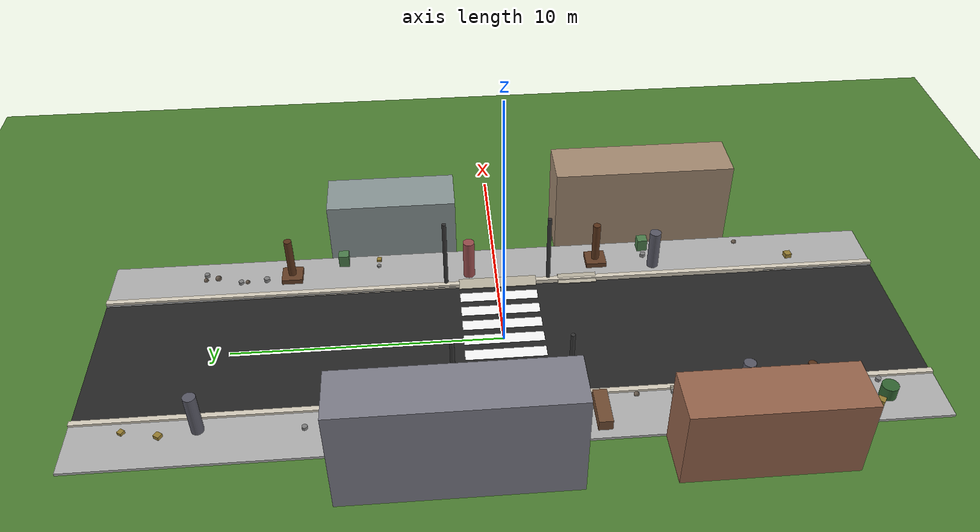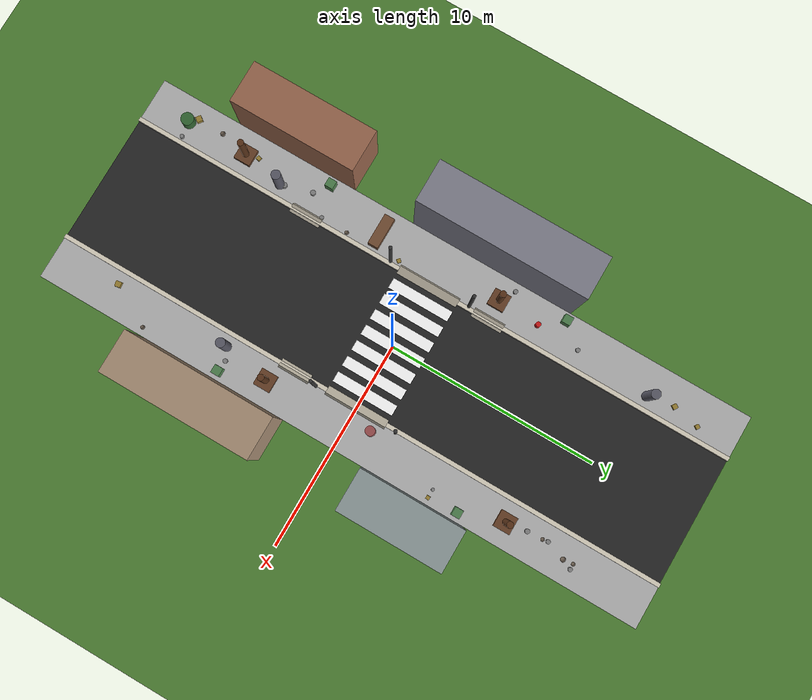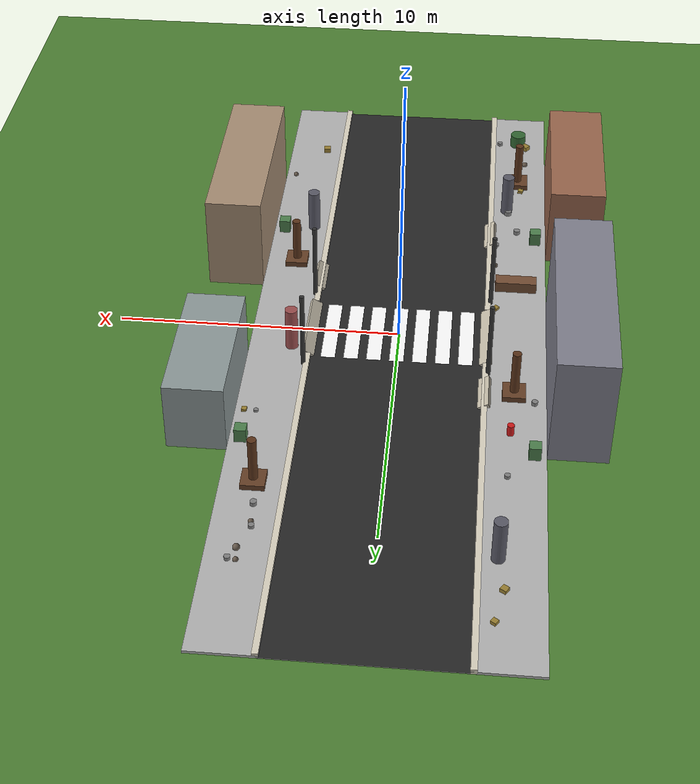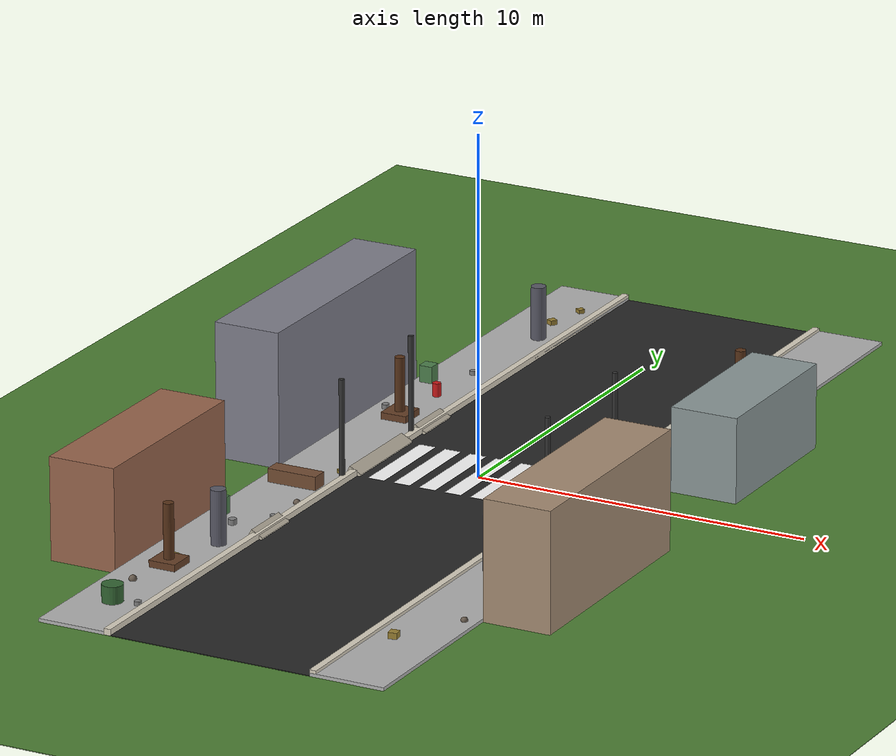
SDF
<?xml version="1.0" ?>
<sdf version="1.9">
  <world name="level3_challenge">
    <physics name="1ms" type="ignore">
      <max_step_size>0.001</max_step_size>
      <real_time_factor>1.0</real_time_factor>
    </physics>
    <plugin filename="gz-sim-physics-system" name="gz::sim::systems::Physics"/>
    <plugin filename="gz-sim-scene-broadcaster-system" name="gz::sim::systems::SceneBroadcaster"/>
    <plugin filename="gz-sim-sensors-system" name="gz::sim::systems::Sensors">
      <render_engine>ogre2</render_engine>
    </plugin>
    <plugin filename="gz-sim-user-commands-system" name="gz::sim::systems::UserCommands"/>

    <light type="directional" name="sun">
      <cast_shadows>true</cast_shadows>
      <pose>0 0 10 0 0 0</pose>
      <diffuse>0.8 0.8 0.8 1</diffuse>
      <specular>0.2 0.2 0.2 1</specular>
      <attenuation><range>1000</range><constant>0.9</constant><linear>0.01</linear><quadratic>0.001</quadratic></attenuation>
      <direction>-0.5 0.1 -0.9</direction>
    </light>

    <!-- Level 3: 고밀도 challenge - 고밀도 장애물, 좁은 통로, 연석/경사로 다수 -->

    <model name="ground_plane_visual">
      <static>true</static>
      <pose>0 0 -0.01 0 0 0</pose>
      <link name="link">
        <collision name="collision"><geometry><box><size>100 100 0.02</size></box></geometry></collision>
        <visual name="visual"><geometry><box><size>100 100 0.02</size></box></geometry>
          <material><ambient>0.3 0.5 0.2 1</ambient><diffuse>0.3 0.5 0.2 1</diffuse></material></visual>
      </link>
    </model>

    <model name="road">
      <static>true</static>
      <pose>0 0 0.01 0 0 0</pose>
      <link name="link">
        <collision name="collision"><geometry><box><size>6.0 30.0 0.02</size></box></geometry></collision>
        <visual name="visual"><geometry><box><size>6.0 30.0 0.02</size></box></geometry>
          <material><ambient>0.15 0.15 0.15 1</ambient><diffuse>0.15 0.15 0.15 1</diffuse></material></visual>
      </link>
    </model>

    <model name="sidewalk_left">
      <static>true</static>
      <pose>-4.1 0 0.05 0 0 0</pose>
      <link name="link">
        <collision name="collision"><geometry><box><size>2.2 30.0 0.1</size></box></geometry></collision>
        <visual name="visual"><geometry><box><size>2.2 30.0 0.1</size></box></geometry>
          <material><ambient>0.7 0.7 0.7 1</ambient><diffuse>0.7 0.7 0.7 1</diffuse></material></visual>
      </link>
    </model>

    <model name="sidewalk_right">
      <static>true</static>
      <pose>4.1 0 0.05 0 0 0</pose>
      <link name="link">
        <collision name="collision"><geometry><box><size>2.2 30.0 0.1</size></box></geometry></collision>
        <visual name="visual"><geometry><box><size>2.2 30.0 0.1</size></box></geometry>
          <material><ambient>0.7 0.7 0.7 1</ambient><diffuse>0.7 0.7 0.7 1</diffuse></material></visual>
      </link>
    </model>

    <model name="crosswalk_1">
      <static>true</static>
      <pose>-2.4 0 0.02 0 0 0</pose>
      <link name="link">
        <collision name="collision"><geometry><box><size>0.5 3 0.01</size></box></geometry></collision>
        <visual name="visual"><geometry><box><size>0.5 3 0.01</size></box></geometry>
          <material><ambient>1 1 1 1</ambient><diffuse>1 1 1 1</diffuse></material></visual>
      </link>
    </model>

    <model name="crosswalk_2">
      <static>true</static>
      <pose>-1.6 0 0.02 0 0 0</pose>
      <link name="link">
        <collision name="collision"><geometry><box><size>0.5 3 0.01</size></box></geometry></collision>
        <visual name="visual"><geometry><box><size>0.5 3 0.01</size></box></geometry>
          <material><ambient>1 1 1 1</ambient><diffuse>1 1 1 1</diffuse></material></visual>
      </link>
    </model>

    <model name="crosswalk_3">
      <static>true</static>
      <pose>-0.8 0 0.02 0 0 0</pose>
      <link name="link">
        <collision name="collision"><geometry><box><size>0.5 3 0.01</size></box></geometry></collision>
        <visual name="visual"><geometry><box><size>0.5 3 0.01</size></box></geometry>
          <material><ambient>1 1 1 1</ambient><diffuse>1 1 1 1</diffuse></material></visual>
      </link>
    </model>

    <model name="crosswalk_4">
      <static>true</static>
      <pose>0.0 0 0.02 0 0 0</pose>
      <link name="link">
        <collision name="collision"><geometry><box><size>0.5 3 0.01</size></box></geometry></collision>
        <visual name="visual"><geometry><box><size>0.5 3 0.01</size></box></geometry>
          <material><ambient>1 1 1 1</ambient><diffuse>1 1 1 1</diffuse></material></visual>
      </link>
    </model>

    <model name="crosswalk_5">
      <static>true</static>
      <pose>0.8 0 0.02 0 0 0</pose>
      <link name="link">
        <collision name="collision"><geometry><box><size>0.5 3 0.01</size></box></geometry></collision>
        <visual name="visual"><geometry><box><size>0.5 3 0.01</size></box></geometry>
          <material><ambient>1 1 1 1</ambient><diffuse>1 1 1 1</diffuse></material></visual>
      </link>
    </model>

    <model name="crosswalk_6">
      <static>true</static>
      <pose>1.6 0 0.02 0 0 0</pose>
      <link name="link">
        <collision name="collision"><geometry><box><size>0.5 3 0.01</size></box></geometry></collision>
        <visual name="visual"><geometry><box><size>0.5 3 0.01</size></box></geometry>
          <material><ambient>1 1 1 1</ambient><diffuse>1 1 1 1</diffuse></material></visual>
      </link>
    </model>

    <model name="crosswalk_7">
      <static>true</static>
      <pose>2.4 0 0.02 0 0 0</pose>
      <link name="link">
        <collision name="collision"><geometry><box><size>0.5 3 0.01</size></box></geometry></collision>
        <visual name="visual"><geometry><box><size>0.5 3 0.01</size></box></geometry>
          <material><ambient>1 1 1 1</ambient><diffuse>1 1 1 1</diffuse></material></visual>
      </link>
    </model>

    <model name="curb_left_south">
      <static>true</static>
      <pose>-3.1 -8.25 0.09999999999999999 0 0 0</pose>
      <link name="link">
        <collision name="collision"><geometry><box><size>0.2 13.5 0.18</size></box></geometry></collision>
        <visual name="visual"><geometry><box><size>0.2 13.5 0.18</size></box></geometry>
          <material><ambient>0.85 0.82 0.75 1</ambient><diffuse>0.85 0.82 0.75 1</diffuse></material></visual>
      </link>
    </model>

    <model name="curb_left_north">
      <static>true</static>
      <pose>-3.1 8.25 0.09999999999999999 0 0 0</pose>
      <link name="link">
        <collision name="collision"><geometry><box><size>0.2 13.5 0.18</size></box></geometry></collision>
        <visual name="visual"><geometry><box><size>0.2 13.5 0.18</size></box></geometry>
          <material><ambient>0.85 0.82 0.75 1</ambient><diffuse>0.85 0.82 0.75 1</diffuse></material></visual>
      </link>
    </model>

    <model name="curb_right_south">
      <static>true</static>
      <pose>3.1 -8.25 0.09999999999999999 0 0 0</pose>
      <link name="link">
        <collision name="collision"><geometry><box><size>0.2 13.5 0.18</size></box></geometry></collision>
        <visual name="visual"><geometry><box><size>0.2 13.5 0.18</size></box></geometry>
          <material><ambient>0.85 0.82 0.75 1</ambient><diffuse>0.85 0.82 0.75 1</diffuse></material></visual>
      </link>
    </model>

    <model name="curb_right_north">
      <static>true</static>
      <pose>3.1 8.25 0.09999999999999999 0 0 0</pose>
      <link name="link">
        <collision name="collision"><geometry><box><size>0.2 13.5 0.18</size></box></geometry></collision>
        <visual name="visual"><geometry><box><size>0.2 13.5 0.18</size></box></geometry>
          <material><ambient>0.85 0.82 0.75 1</ambient><diffuse>0.85 0.82 0.75 1</diffuse></material></visual>
      </link>
    </model>

    <model name="curb_ramp_left">
      <static>true</static>
      <pose>-3.1 0 0.09 0 0.5 0</pose>
      <link name="link">
        <collision name="collision"><geometry><box><size>0.4 3 0.18</size></box></geometry></collision>
        <visual name="visual"><geometry><box><size>0.4 3 0.18</size></box></geometry>
          <material><ambient>0.75 0.72 0.65 1</ambient><diffuse>0.75 0.72 0.65 1</diffuse></material></visual>
      </link>
    </model>

    <model name="curb_ramp_right">
      <static>true</static>
      <pose>3.1 0 0.09 0 -0.5 0</pose>
      <link name="link">
        <collision name="collision"><geometry><box><size>0.4 3 0.18</size></box></geometry></collision>
        <visual name="visual"><geometry><box><size>0.4 3 0.18</size></box></geometry>
          <material><ambient>0.75 0.72 0.65 1</ambient><diffuse>0.75 0.72 0.65 1</diffuse></material></visual>
      </link>
    </model>

    <model name="curb_extra_ramp_0">
      <static>true</static>
      <pose>-3.1 -6.29 0.09 0 0.5 0</pose>
      <link name="link">
        <collision name="collision"><geometry><box><size>0.4 1.5 0.18</size></box></geometry></collision>
        <visual name="visual"><geometry><box><size>0.4 1.5 0.18</size></box></geometry>
          <material><ambient>0.75 0.72 0.65 1</ambient><diffuse>0.75 0.72 0.65 1</diffuse></material></visual>
      </link>
    </model>

    <model name="curb_extra_ramp_1">
      <static>true</static>
      <pose>3.1 -3.12 0.09 0 -0.5 0</pose>
      <link name="link">
        <collision name="collision"><geometry><box><size>0.4 1.5 0.18</size></box></geometry></collision>
        <visual name="visual"><geometry><box><size>0.4 1.5 0.18</size></box></geometry>
          <material><ambient>0.75 0.72 0.65 1</ambient><diffuse>0.75 0.72 0.65 1</diffuse></material></visual>
      </link>
    </model>

    <model name="curb_extra_ramp_2">
      <static>true</static>
      <pose>-3.1 3.02 0.09 0 0.5 0</pose>
      <link name="link">
        <collision name="collision"><geometry><box><size>0.4 1.5 0.18</size></box></geometry></collision>
        <visual name="visual"><geometry><box><size>0.4 1.5 0.18</size></box></geometry>
          <material><ambient>0.75 0.72 0.65 1</ambient><diffuse>0.75 0.72 0.65 1</diffuse></material></visual>
      </link>
    </model>

    <model name="building_left_1">
      <static>true</static>
      <pose>-6.2 -8 1.5 0 0 0</pose>
      <link name="link">
        <collision name="collision"><geometry><box><size>2 6 3</size></box></geometry></collision>
        <visual name="visual"><geometry><box><size>2 6 3</size></box></geometry>
          <material><ambient>0.6 0.4 0.3 1</ambient><diffuse>0.6 0.4 0.3 1</diffuse></material></visual>
      </link>
    </model>

    <model name="building_left_2">
      <static>true</static>
      <pose>-6.2 2 2 0 0 0</pose>
      <link name="link">
        <collision name="collision"><geometry><box><size>2 8 4</size></box></geometry></collision>
        <visual name="visual"><geometry><box><size>2 8 4</size></box></geometry>
          <material><ambient>0.5 0.5 0.55 1</ambient><diffuse>0.5 0.5 0.55 1</diffuse></material></visual>
      </link>
    </model>

    <model name="building_right_1">
      <static>true</static>
      <pose>6.2 -6 1.75 0 0 0</pose>
      <link name="link">
        <collision name="collision"><geometry><box><size>2 7 3.5</size></box></geometry></collision>
        <visual name="visual"><geometry><box><size>2 7 3.5</size></box></geometry>
          <material><ambient>0.65 0.55 0.45 1</ambient><diffuse>0.65 0.55 0.45 1</diffuse></material></visual>
      </link>
    </model>

    <model name="building_right_2">
      <static>true</static>
      <pose>6.2 4 1.25 0 0 0</pose>
      <link name="link">
        <collision name="collision"><geometry><box><size>2 5 2.5</size></box></geometry></collision>
        <visual name="visual"><geometry><box><size>2 5 2.5</size></box></geometry>
          <material><ambient>0.55 0.6 0.6 1</ambient><diffuse>0.55 0.6 0.6 1</diffuse></material></visual>
      </link>
    </model>

    <model name="tree_1">
      <static>true</static>
      <pose>-4.1 -10 0.15 0 0 0</pose>
      <link name="link">
        <collision name="collision"><geometry><box><size>0.8 0.8 0.3</size></box></geometry></collision>
        <visual name="visual"><geometry><box><size>0.8 0.8 0.3</size></box></geometry>
          <material><ambient>0.4 0.25 0.15 1</ambient><diffuse>0.4 0.25 0.15 1</diffuse></material></visual>
      </link>
    </model>

    <model name="tree_1_trunk">
      <static>true</static>
      <pose>-4.1 -10 1.1 0 0 0</pose>
      <link name="link">
        <collision name="collision"><geometry><cylinder><radius>0.15</radius><length>1.6</length></cylinder></geometry></collision>
        <visual name="visual"><geometry><cylinder><radius>0.15</radius><length>1.6</length></cylinder></geometry>
          <material><ambient>0.35 0.2 0.1 1</ambient><diffuse>0.35 0.2 0.1 1</diffuse></material></visual>
      </link>
    </model>

    <model name="tree_2">
      <static>true</static>
      <pose>4.1 -4 0.15 0 0 0</pose>
      <link name="link">
        <collision name="collision"><geometry><box><size>0.8 0.8 0.3</size></box></geometry></collision>
        <visual name="visual"><geometry><box><size>0.8 0.8 0.3</size></box></geometry>
          <material><ambient>0.4 0.25 0.15 1</ambient><diffuse>0.4 0.25 0.15 1</diffuse></material></visual>
      </link>
    </model>

    <model name="tree_2_trunk">
      <static>true</static>
      <pose>4.1 -4 1.1 0 0 0</pose>
      <link name="link">
        <collision name="collision"><geometry><cylinder><radius>0.15</radius><length>1.6</length></cylinder></geometry></collision>
        <visual name="visual"><geometry><cylinder><radius>0.15</radius><length>1.6</length></cylinder></geometry>
          <material><ambient>0.35 0.2 0.1 1</ambient><diffuse>0.35 0.2 0.1 1</diffuse></material></visual>
      </link>
    </model>

    <model name="tree_3">
      <static>true</static>
      <pose>-4.1 3 0.15 0 0 0</pose>
      <link name="link">
        <collision name="collision"><geometry><box><size>0.8 0.8 0.3</size></box></geometry></collision>
        <visual name="visual"><geometry><box><size>0.8 0.8 0.3</size></box></geometry>
          <material><ambient>0.4 0.25 0.15 1</ambient><diffuse>0.4 0.25 0.15 1</diffuse></material></visual>
      </link>
    </model>

    <model name="tree_3_trunk">
      <static>true</static>
      <pose>-4.1 3 1.1 0 0 0</pose>
      <link name="link">
        <collision name="collision"><geometry><cylinder><radius>0.15</radius><length>1.6</length></cylinder></geometry></collision>
        <visual name="visual"><geometry><cylinder><radius>0.15</radius><length>1.6</length></cylinder></geometry>
          <material><ambient>0.35 0.2 0.1 1</ambient><diffuse>0.35 0.2 0.1 1</diffuse></material></visual>
      </link>
    </model>

    <model name="tree_4">
      <static>true</static>
      <pose>4.1 8 0.15 0 0 0</pose>
      <link name="link">
        <collision name="collision"><geometry><box><size>0.8 0.8 0.3</size></box></geometry></collision>
        <visual name="visual"><geometry><box><size>0.8 0.8 0.3</size></box></geometry>
          <material><ambient>0.4 0.25 0.15 1</ambient><diffuse>0.4 0.25 0.15 1</diffuse></material></visual>
      </link>
    </model>

    <model name="tree_4_trunk">
      <static>true</static>
      <pose>4.1 8 1.1 0 0 0</pose>
      <link name="link">
        <collision name="collision"><geometry><cylinder><radius>0.15</radius><length>1.6</length></cylinder></geometry></collision>
        <visual name="visual"><geometry><cylinder><radius>0.15</radius><length>1.6</length></cylinder></geometry>
          <material><ambient>0.35 0.2 0.1 1</ambient><diffuse>0.35 0.2 0.1 1</diffuse></material></visual>
      </link>
    </model>

    <model name="bench_1">
      <static>true</static>
      <pose>-4.1 -3 0.25 0 0 0</pose>
      <link name="link">
        <collision name="collision"><geometry><box><size>1.5 0.5 0.5</size></box></geometry></collision>
        <visual name="visual"><geometry><box><size>1.5 0.5 0.5</size></box></geometry>
          <material><ambient>0.45 0.3 0.2 1</ambient><diffuse>0.45 0.3 0.2 1</diffuse></material></visual>
      </link>
    </model>

    <model name="trash_bin_1">
      <static>true</static>
      <pose>-4.1 -13 0.3 0 0 0</pose>
      <link name="link">
        <collision name="collision"><geometry><cylinder><radius>0.3</radius><length>0.6</length></cylinder></geometry></collision>
        <visual name="visual"><geometry><cylinder><radius>0.3</radius><length>0.6</length></cylinder></geometry>
          <material><ambient>0.2 0.4 0.2 1</ambient><diffuse>0.2 0.4 0.2 1</diffuse></material></visual>
      </link>
    </model>

    <model name="hydrant_1">
      <static>true</static>
      <pose>-3.9999999999999996 5 0.25 0 0 0</pose>
      <link name="link">
        <collision name="collision"><geometry><cylinder><radius>0.12</radius><length>0.5</length></cylinder></geometry></collision>
        <visual name="visual"><geometry><cylinder><radius>0.12</radius><length>0.5</length></cylinder></geometry>
          <material><ambient>0.8 0.1 0.1 1</ambient><diffuse>0.8 0.1 0.1 1</diffuse></material></visual>
      </link>
    </model>

    <model name="traffic_light_1">
      <static>true</static>
      <pose>-3.1999999999999997 -2 1.5 0 0 0</pose>
      <link name="link">
        <collision name="collision"><geometry><cylinder><radius>0.08</radius><length>3</length></cylinder></geometry></collision>
        <visual name="visual"><geometry><cylinder><radius>0.08</radius><length>3</length></cylinder></geometry>
          <material><ambient>0.2 0.2 0.2 1</ambient><diffuse>0.2 0.2 0.2 1</diffuse></material></visual>
      </link>
    </model>

    <model name="traffic_light_2">
      <static>true</static>
      <pose>3.1999999999999997 2 1.5 0 0 0</pose>
      <link name="link">
        <collision name="collision"><geometry><cylinder><radius>0.08</radius><length>3</length></cylinder></geometry></collision>
        <visual name="visual"><geometry><cylinder><radius>0.08</radius><length>3</length></cylinder></geometry>
          <material><ambient>0.2 0.2 0.2 1</ambient><diffuse>0.2 0.2 0.2 1</diffuse></material></visual>
      </link>
    </model>

    <model name="traffic_light_3">
      <static>true</static>
      <pose>-3.1999999999999997 2 1.5 0 0 0</pose>
      <link name="link">
        <collision name="collision"><geometry><cylinder><radius>0.08</radius><length>3</length></cylinder></geometry></collision>
        <visual name="visual"><geometry><cylinder><radius>0.08</radius><length>3</length></cylinder></geometry>
          <material><ambient>0.2 0.2 0.2 1</ambient><diffuse>0.2 0.2 0.2 1</diffuse></material></visual>
      </link>
    </model>

    <model name="traffic_light_4">
      <static>true</static>
      <pose>3.1999999999999997 -2 1.5 0 0 0</pose>
      <link name="link">
        <collision name="collision"><geometry><cylinder><radius>0.08</radius><length>3</length></cylinder></geometry></collision>
        <visual name="visual"><geometry><cylinder><radius>0.08</radius><length>3</length></cylinder></geometry>
          <material><ambient>0.2 0.2 0.2 1</ambient><diffuse>0.2 0.2 0.2 1</diffuse></material></visual>
      </link>
    </model>

    <model name="pedestrian_static_0">
      <static>true</static>
      <pose>-3.70 10.63 0.85 0 0 0</pose>
      <link name="link">
        <collision name="collision"><geometry><cylinder><radius>0.22</radius><length>1.7</length></cylinder></geometry></collision>
        <visual name="visual"><geometry><cylinder><radius>0.22</radius><length>1.7</length></cylinder></geometry>
          <material><ambient>0.35 0.35 0.4 1</ambient><diffuse>0.35 0.35 0.4 1</diffuse></material></visual>
      </link>
    </model>

    <model name="pedestrian_static_1">
      <static>true</static>
      <pose>3.70 -6.26 0.85 0 0 0</pose>
      <link name="link">
        <collision name="collision"><geometry><cylinder><radius>0.22</radius><length>1.7</length></cylinder></geometry></collision>
        <visual name="visual"><geometry><cylinder><radius>0.22</radius><length>1.7</length></cylinder></geometry>
          <material><ambient>0.35 0.35 0.4 1</ambient><diffuse>0.35 0.35 0.4 1</diffuse></material></visual>
      </link>
    </model>

    <model name="pedestrian_static_2">
      <static>true</static>
      <pose>-3.70 -8.01 0.85 0 0 0</pose>
      <link name="link">
        <collision name="collision"><geometry><cylinder><radius>0.22</radius><length>1.7</length></cylinder></geometry></collision>
        <visual name="visual"><geometry><cylinder><radius>0.22</radius><length>1.7</length></cylinder></geometry>
          <material><ambient>0.35 0.35 0.4 1</ambient><diffuse>0.35 0.35 0.4 1</diffuse></material></visual>
      </link>
    </model>

    <model name="pedestrian_dynamic_0">
      <static>false</static>
      <pose>3.70 1.07 0.85 0 0 0</pose>
      <link name="link">
        <collision name="collision"><geometry><cylinder><radius>0.22</radius><length>1.7</length></cylinder></geometry></collision>
        <visual name="visual"><geometry><cylinder><radius>0.22</radius><length>1.7</length></cylinder></geometry>
          <material><ambient>0.6 0.3 0.3 1</ambient><diffuse>0.6 0.3 0.3 1</diffuse></material></visual>
      </link>
    </model>

    <model name="obstacle_0">
      <static>true</static>
      <pose>3.94 9.75 0.11 0 0 0</pose>
      <link name="link">
        <collision name="collision"><geometry><sphere><radius>0.09007493034948366</radius></sphere></geometry></collision>
        <visual name="visual"><geometry><sphere><radius>0.09007493034948366</radius></sphere></geometry>
          <material><ambient>0.4 0.35 0.3 1</ambient><diffuse>0.4 0.35 0.3 1</diffuse></material></visual>
      </link>
    </model>

    <model name="obstacle_1">
      <static>true</static>
      <pose>4.49 4.63 0.10 0 0 0</pose>
      <link name="link">
        <collision name="collision"><geometry><cylinder><radius>0.07916204348475482</radius><length>0.15832408696950964</length></cylinder></geometry></collision>
        <visual name="visual"><geometry><cylinder><radius>0.07916204348475482</radius><length>0.15832408696950964</length></cylinder></geometry>
          <material><ambient>0.5 0.5 0.5 1</ambient><diffuse>0.5 0.5 0.5 1</diffuse></material></visual>
      </link>
    </model>

    <model name="obstacle_2">
      <static>true</static>
      <pose>-4.42 -12.66 0.15 0 0 0.93</pose>
      <link name="link">
        <collision name="collision"><geometry><box><size>0.26 0.26 0.26</size></box></geometry></collision>
        <visual name="visual"><geometry><box><size>0.26 0.26 0.26</size></box></geometry>
          <material><ambient>0.6 0.5 0.2 1</ambient><diffuse>0.6 0.5 0.2 1</diffuse></material></visual>
      </link>
    </model>

    <model name="obstacle_3">
      <static>true</static>
      <pose>4.44 11.37 0.12 0 0 0</pose>
      <link name="link">
        <collision name="collision"><geometry><cylinder><radius>0.10067262126004836</radius><length>0.20134524252009672</length></cylinder></geometry></collision>
        <visual name="visual"><geometry><cylinder><radius>0.10067262126004836</radius><length>0.20134524252009672</length></cylinder></geometry>
          <material><ambient>0.5 0.5 0.5 1</ambient><diffuse>0.5 0.5 0.5 1</diffuse></material></visual>
      </link>
    </model>

    <model name="obstacle_4">
      <static>true</static>
      <pose>4.84 -9.88 0.12 0 0 0</pose>
      <link name="link">
        <collision name="collision"><geometry><sphere><radius>0.09875877779971459</radius></sphere></geometry></collision>
        <visual name="visual"><geometry><sphere><radius>0.09875877779971459</radius></sphere></geometry>
          <material><ambient>0.4 0.35 0.3 1</ambient><diffuse>0.4 0.35 0.3 1</diffuse></material></visual>
      </link>
    </model>

    <model name="obstacle_5">
      <static>true</static>
      <pose>-4.11 -6.53 0.14 0 0 0</pose>
      <link name="link">
        <collision name="collision"><geometry><cylinder><radius>0.11868268015496822</radius><length>0.23736536030993644</length></cylinder></geometry></collision>
        <visual name="visual"><geometry><cylinder><radius>0.11868268015496822</radius><length>0.23736536030993644</length></cylinder></geometry>
          <material><ambient>0.5 0.5 0.5 1</ambient><diffuse>0.5 0.5 0.5 1</diffuse></material></visual>
      </link>
    </model>

    <model name="obstacle_6">
      <static>true</static>
      <pose>3.97 9.00 0.13 0 0 0</pose>
      <link name="link">
        <collision name="collision"><geometry><cylinder><radius>0.11231147779382156</radius><length>0.2246229555876431</length></cylinder></geometry></collision>
        <visual name="visual"><geometry><cylinder><radius>0.11231147779382156</radius><length>0.2246229555876431</length></cylinder></geometry>
          <material><ambient>0.5 0.5 0.5 1</ambient><diffuse>0.5 0.5 0.5 1</diffuse></material></visual>
      </link>
    </model>

    <model name="obstacle_7">
      <static>true</static>
      <pose>4.23 10.91 0.14 0 0 0</pose>
      <link name="link">
        <collision name="collision"><geometry><sphere><radius>0.11932883888127284</radius></sphere></geometry></collision>
        <visual name="visual"><geometry><sphere><radius>0.11932883888127284</radius></sphere></geometry>
          <material><ambient>0.4 0.35 0.3 1</ambient><diffuse>0.4 0.35 0.3 1</diffuse></material></visual>
      </link>
    </model>

    <model name="obstacle_8">
      <static>true</static>
      <pose>4.89 4.62 0.11 0 0 1.51</pose>
      <link name="link">
        <collision name="collision"><geometry><box><size>0.17 0.17 0.17</size></box></geometry></collision>
        <visual name="visual"><geometry><box><size>0.17 0.17 0.17</size></box></geometry>
          <material><ambient>0.6 0.5 0.2 1</ambient><diffuse>0.6 0.5 0.2 1</diffuse></material></visual>
      </link>
    </model>

    <model name="obstacle_9">
      <static>true</static>
      <pose>-3.76 -7.80 0.15 0 0 0</pose>
      <link name="link">
        <collision name="collision"><geometry><cylinder><radius>0.12905451546776803</radius><length>0.25810903093553605</length></cylinder></geometry></collision>
        <visual name="visual"><geometry><cylinder><radius>0.12905451546776803</radius><length>0.25810903093553605</length></cylinder></geometry>
          <material><ambient>0.5 0.5 0.5 1</ambient><diffuse>0.5 0.5 0.5 1</diffuse></material></visual>
      </link>
    </model>

    <model name="obstacle_10">
      <static>true</static>
      <pose>3.76 -11.79 0.15 0 0 0.14</pose>
      <link name="link">
        <collision name="collision"><geometry><box><size>0.26 0.26 0.26</size></box></geometry></collision>
        <visual name="visual"><geometry><box><size>0.26 0.26 0.26</size></box></geometry>
          <material><ambient>0.6 0.5 0.2 1</ambient><diffuse>0.6 0.5 0.2 1</diffuse></material></visual>
      </link>
    </model>

    <model name="obstacle_11">
      <static>true</static>
      <pose>-4.24 -9.43 0.11 0 0 1.37</pose>
      <link name="link">
        <collision name="collision"><geometry><box><size>0.19 0.19 0.19</size></box></geometry></collision>
        <visual name="visual"><geometry><box><size>0.19 0.19 0.19</size></box></geometry>
          <material><ambient>0.6 0.5 0.2 1</ambient><diffuse>0.6 0.5 0.2 1</diffuse></material></visual>
      </link>
    </model>

    <model name="obstacle_12">
      <static>true</static>
      <pose>-3.93 7.06 0.12 0 0 0</pose>
      <link name="link">
        <collision name="collision"><geometry><cylinder><radius>0.09955730998291545</radius><length>0.1991146199658309</length></cylinder></geometry></collision>
        <visual name="visual"><geometry><cylinder><radius>0.09955730998291545</radius><length>0.1991146199658309</length></cylinder></geometry>
          <material><ambient>0.5 0.5 0.5 1</ambient><diffuse>0.5 0.5 0.5 1</diffuse></material></visual>
      </link>
    </model>

    <model name="obstacle_13">
      <static>true</static>
      <pose>4.18 11.39 0.11 0 0 0</pose>
      <link name="link">
        <collision name="collision"><geometry><sphere><radius>0.09313977720478418</radius></sphere></geometry></collision>
        <visual name="visual"><geometry><sphere><radius>0.09313977720478418</radius></sphere></geometry>
          <material><ambient>0.4 0.35 0.3 1</ambient><diffuse>0.4 0.35 0.3 1</diffuse></material></visual>
      </link>
    </model>

    <model name="obstacle_14">
      <static>true</static>
      <pose>-4.40 -11.42 0.13 0 0 0</pose>
      <link name="link">
        <collision name="collision"><geometry><sphere><radius>0.11398458257177906</radius></sphere></geometry></collision>
        <visual name="visual"><geometry><sphere><radius>0.11398458257177906</radius></sphere></geometry>
          <material><ambient>0.4 0.35 0.3 1</ambient><diffuse>0.4 0.35 0.3 1</diffuse></material></visual>
      </link>
    </model>

    <model name="obstacle_15">
      <static>true</static>
      <pose>-3.35 -5.63 0.11 0 0 0</pose>
      <link name="link">
        <collision name="collision"><geometry><cylinder><radius>0.09211925830805998</radius><length>0.18423851661611995</length></cylinder></geometry></collision>
        <visual name="visual"><geometry><cylinder><radius>0.09211925830805998</radius><length>0.18423851661611995</length></cylinder></geometry>
          <material><ambient>0.5 0.5 0.5 1</ambient><diffuse>0.5 0.5 0.5 1</diffuse></material></visual>
      </link>
    </model>

    <model name="obstacle_16">
      <static>true</static>
      <pose>-3.33 -4.33 0.12 0 0 0</pose>
      <link name="link">
        <collision name="collision"><geometry><sphere><radius>0.09841277835751222</radius></sphere></geometry></collision>
        <visual name="visual"><geometry><sphere><radius>0.09841277835751222</radius></sphere></geometry>
          <material><ambient>0.4 0.35 0.3 1</ambient><diffuse>0.4 0.35 0.3 1</diffuse></material></visual>
      </link>
    </model>

    <model name="obstacle_17">
      <static>true</static>
      <pose>3.90 9.99 0.12 0 0 0</pose>
      <link name="link">
        <collision name="collision"><geometry><cylinder><radius>0.10010254142323707</radius><length>0.20020508284647415</length></cylinder></geometry></collision>
        <visual name="visual"><geometry><cylinder><radius>0.10010254142323707</radius><length>0.20020508284647415</length></cylinder></geometry>
          <material><ambient>0.5 0.5 0.5 1</ambient><diffuse>0.5 0.5 0.5 1</diffuse></material></visual>
      </link>
    </model>

    <model name="obstacle_18">
      <static>true</static>
      <pose>-3.91 11.90 0.13 0 0 1.00</pose>
      <link name="link">
        <collision name="collision"><geometry><box><size>0.22 0.22 0.22</size></box></geometry></collision>
        <visual name="visual"><geometry><box><size>0.22 0.22 0.22</size></box></geometry>
          <material><ambient>0.6 0.5 0.2 1</ambient><diffuse>0.6 0.5 0.2 1</diffuse></material></visual>
      </link>
    </model>

    <model name="obstacle_19">
      <static>true</static>
      <pose>-3.40 -1.69 0.11 0 0 0.86</pose>
      <link name="link">
        <collision name="collision"><geometry><box><size>0.18 0.18 0.18</size></box></geometry></collision>
        <visual name="visual"><geometry><box><size>0.18 0.18 0.18</size></box></geometry>
          <material><ambient>0.6 0.5 0.2 1</ambient><diffuse>0.6 0.5 0.2 1</diffuse></material></visual>
      </link>
    </model>

    <model name="obstacle_20">
      <static>true</static>
      <pose>-3.64 13.16 0.12 0 0 0.97</pose>
      <link name="link">
        <collision name="collision"><geometry><box><size>0.19 0.19 0.19</size></box></geometry></collision>
        <visual name="visual"><geometry><box><size>0.19 0.19 0.19</size></box></geometry>
          <material><ambient>0.6 0.5 0.2 1</ambient><diffuse>0.6 0.5 0.2 1</diffuse></material></visual>
      </link>
    </model>

    <model name="obstacle_21">
      <static>true</static>
      <pose>-4.80 3.44 0.13 0 0 0</pose>
      <link name="link">
        <collision name="collision"><geometry><cylinder><radius>0.10530627793028602</radius><length>0.21061255586057204</length></cylinder></geometry></collision>
        <visual name="visual"><geometry><cylinder><radius>0.10530627793028602</radius><length>0.21061255586057204</length></cylinder></geometry>
          <material><ambient>0.5 0.5 0.5 1</ambient><diffuse>0.5 0.5 0.5 1</diffuse></material></visual>
      </link>
    </model>

    <model name="obstacle_22">
      <static>true</static>
      <pose>4.27 -5.97 0.13 0 0 0</pose>
      <link name="link">
        <collision name="collision"><geometry><cylinder><radius>0.10681768653125957</radius><length>0.21363537306251915</length></cylinder></geometry></collision>
        <visual name="visual"><geometry><cylinder><radius>0.10681768653125957</radius><length>0.21363537306251915</length></cylinder></geometry>
          <material><ambient>0.5 0.5 0.5 1</ambient><diffuse>0.5 0.5 0.5 1</diffuse></material></visual>
      </link>
    </model>

    <model name="obstacle_23">
      <static>true</static>
      <pose>-3.37 -12.93 0.12 0 0 0</pose>
      <link name="link">
        <collision name="collision"><geometry><cylinder><radius>0.09899571371319106</radius><length>0.19799142742638212</length></cylinder></geometry></collision>
        <visual name="visual"><geometry><cylinder><radius>0.09899571371319106</radius><length>0.19799142742638212</length></cylinder></geometry>
          <material><ambient>0.5 0.5 0.5 1</ambient><diffuse>0.5 0.5 0.5 1</diffuse></material></visual>
      </link>
    </model>

    <model name="narrow_gate_left">
      <static>true</static>
      <pose>-4.80 6.0 0.3 0 0 0</pose>
      <link name="link">
        <collision name="collision"><geometry><box><size>0.4 0.4 0.6</size></box></geometry></collision>
        <visual name="visual"><geometry><box><size>0.4 0.4 0.6</size></box></geometry>
          <material><ambient>0.3 0.5 0.3 1</ambient><diffuse>0.3 0.5 0.3 1</diffuse></material></visual>
      </link>
    </model>

    <model name="narrow_gate_right">
      <static>true</static>
      <pose>4.80 6.0 0.3 0 0 0</pose>
      <link name="link">
        <collision name="collision"><geometry><box><size>0.4 0.4 0.6</size></box></geometry></collision>
        <visual name="visual"><geometry><box><size>0.4 0.4 0.6</size></box></geometry>
          <material><ambient>0.3 0.5 0.3 1</ambient><diffuse>0.3 0.5 0.3 1</diffuse></material></visual>
      </link>
    </model>

    <model name="narrow_gate_left2">
      <static>true</static>
      <pose>-4.80 -6.0 0.3 0 0 0</pose>
      <link name="link">
        <collision name="collision"><geometry><box><size>0.4 0.4 0.6</size></box></geometry></collision>
        <visual name="visual"><geometry><box><size>0.4 0.4 0.6</size></box></geometry>
          <material><ambient>0.3 0.5 0.3 1</ambient><diffuse>0.3 0.5 0.3 1</diffuse></material></visual>
      </link>
    </model>

    <model name="narrow_gate_right2">
      <static>true</static>
      <pose>4.80 -6.0 0.3 0 0 0</pose>
      <link name="link">
        <collision name="collision"><geometry><box><size>0.4 0.4 0.6</size></box></geometry></collision>
        <visual name="visual"><geometry><box><size>0.4 0.4 0.6</size></box></geometry>
          <material><ambient>0.3 0.5 0.3 1</ambient><diffuse>0.3 0.5 0.3 1</diffuse></material></visual>
      </link>
    </model>

  </world>
</sdf>
